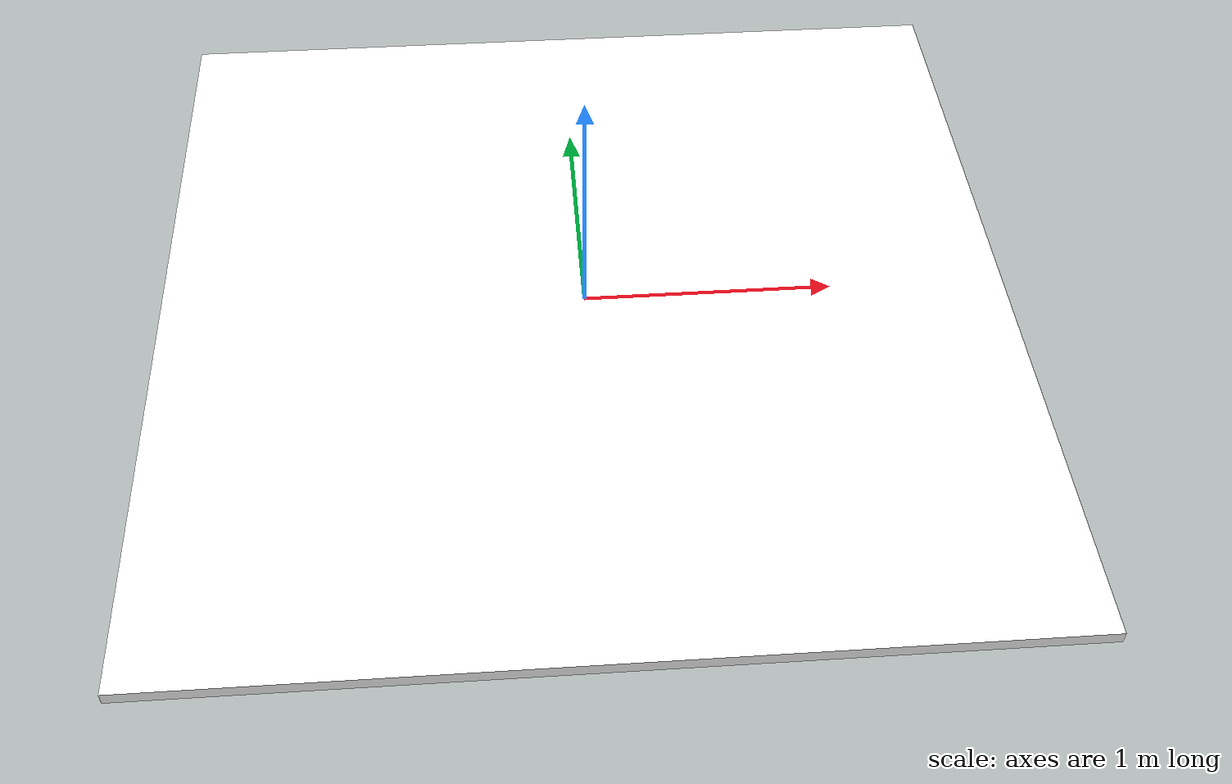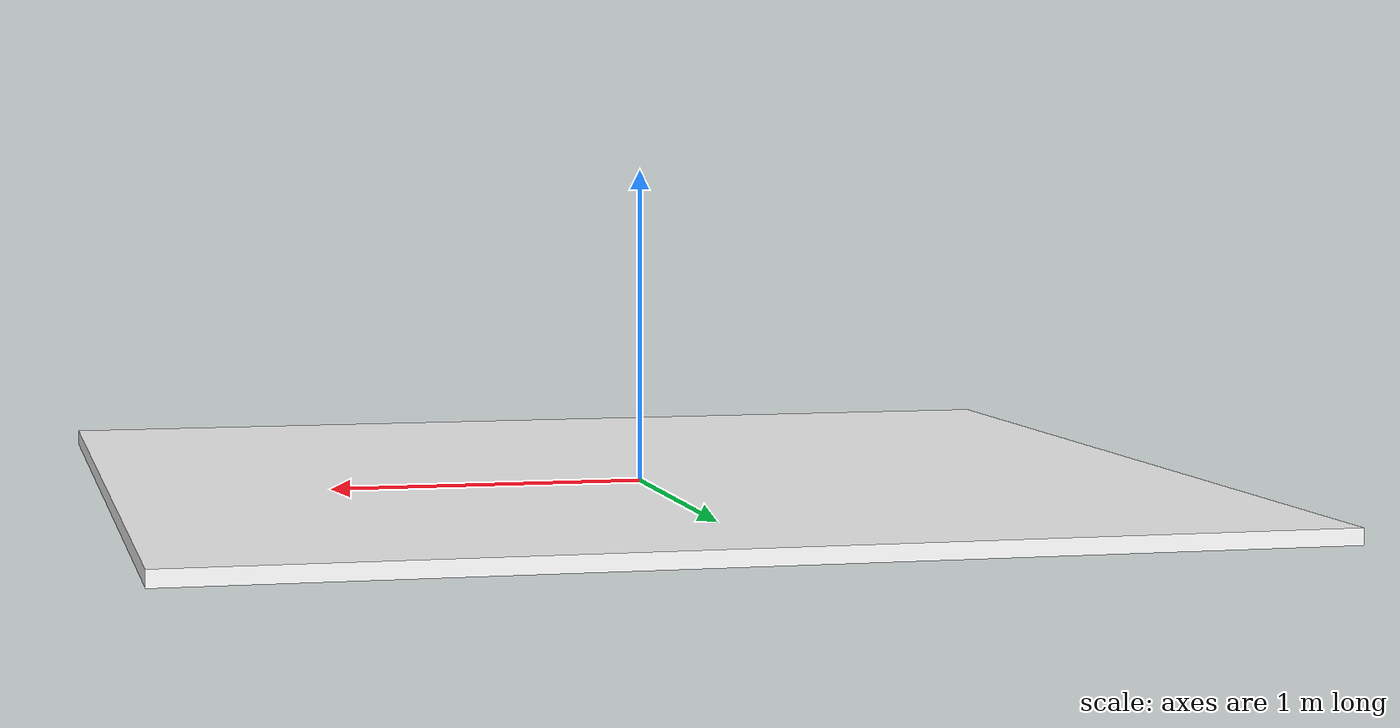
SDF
<?xml version="1.0" encoding="UTF-8"?>
<sdf version="1.9">
  <model name="aruco_plane">
    <static>true</static>

    <link name="link">
      <visual name="aruco_box">
        <geometry>
          <box>
            <size>3.4 3.4 0.05</size>
          </box>
        </geometry>

        <material>
          <ambient>1 1 1 1</ambient>
          <diffuse>1 1 1 1</diffuse>
          <specular>0 0 0 1</specular>
          <pbr>
            <metal>
              <albedo_map>model://aruco_plane/aruco_grid.png</albedo_map>
              <metalness>0</metalness>
              <roughness>1</roughness>
            </metal>
          </pbr>
        </material>
      </visual>
    </link>
  </model>
</sdf>
